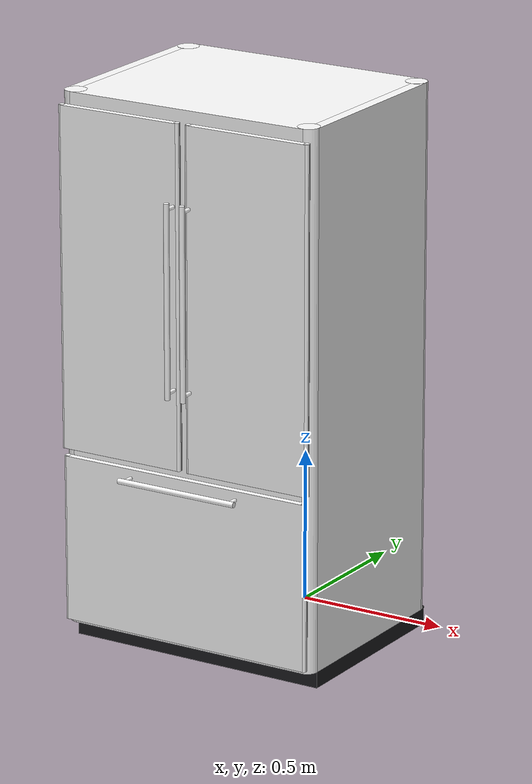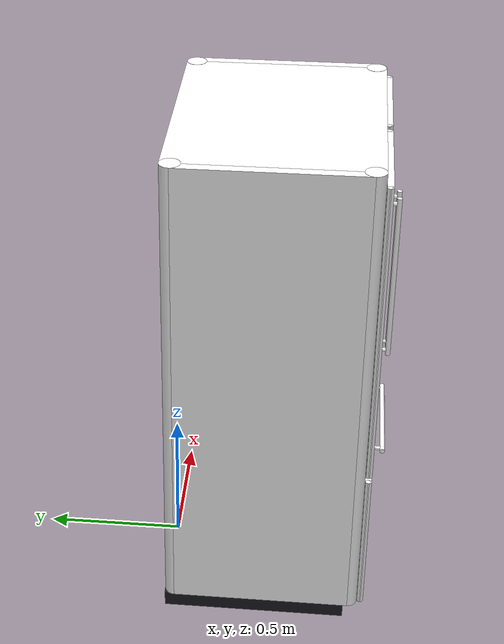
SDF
<?xml version="1.0"?>
<sdf version="1.6">
  <model name="fridge_double_door">
    <static>true</static>
    <link name="link">
      <visual name="plinth">
        <pose>0 -0.325 0.03 0 0 0</pose>
        <geometry><box><size>0.88 0.65 0.06</size></box></geometry>
        <material><ambient>0.11 0.11 0.12 1</ambient><diffuse>0.11 0.11 0.12 1</diffuse><specular>0.05 0.05 0.05 1</specular><emissive>0 0 0 1</emissive></material>
      </visual>
      <visual name="body_a">
        <pose>0 -0.35 0.92 0 0 0</pose>
        <geometry><box><size>0.83 0.7 1.72</size></box></geometry>
        <material><pbr><metal><albedo_map>textures/stainless.png</albedo_map><metalness>0.15</metalness><roughness>0.25</roughness></metal></pbr><ambient>1 1 1 1</ambient><diffuse>1 1 1 1</diffuse><specular>1 1 1 1</specular><emissive>0 0 0 1</emissive></material>
      </visual>
      <visual name="body_b0">
        <pose>-0.4325 -0.35 0.92 0 0 0</pose>
        <geometry><box><size>0.035 0.63 1.72</size></box></geometry>
        <material><pbr><metal><albedo_map>textures/stainless.png</albedo_map><metalness>0.15</metalness><roughness>0.25</roughness></metal></pbr><ambient>1 1 1 1</ambient><diffuse>1 1 1 1</diffuse><specular>1 1 1 1</specular><emissive>0 0 0 1</emissive></material>
      </visual>
      <visual name="body_b1">
        <pose>0.4325 -0.35 0.92 0 0 0</pose>
        <geometry><box><size>0.035 0.63 1.72</size></box></geometry>
        <material><pbr><metal><albedo_map>textures/stainless.png</albedo_map><metalness>0.15</metalness><roughness>0.25</roughness></metal></pbr><ambient>1 1 1 1</ambient><diffuse>1 1 1 1</diffuse><specular>1 1 1 1</specular><emissive>0 0 0 1</emissive></material>
      </visual>
      <visual name="body_c0">
        <pose>-0.415 -0.665 0.92 0 0 0</pose>
        <geometry><cylinder><radius>0.035</radius><length>1.7206</length></cylinder></geometry>
        <material><pbr><metal><albedo_map>textures/stainless.png</albedo_map><metalness>0.15</metalness><roughness>0.25</roughness></metal></pbr><ambient>1 1 1 1</ambient><diffuse>1 1 1 1</diffuse><specular>1 1 1 1</specular><emissive>0 0 0 1</emissive></material>
      </visual>
      <visual name="body_c1">
        <pose>-0.415 -0.035 0.92 0 0 0</pose>
        <geometry><cylinder><radius>0.035</radius><length>1.7208</length></cylinder></geometry>
        <material><pbr><metal><albedo_map>textures/stainless.png</albedo_map><metalness>0.15</metalness><roughness>0.25</roughness></metal></pbr><ambient>1 1 1 1</ambient><diffuse>1 1 1 1</diffuse><specular>1 1 1 1</specular><emissive>0 0 0 1</emissive></material>
      </visual>
      <visual name="body_c2">
        <pose>0.415 -0.665 0.92 0 0 0</pose>
        <geometry><cylinder><radius>0.035</radius><length>1.721</length></cylinder></geometry>
        <material><pbr><metal><albedo_map>textures/stainless.png</albedo_map><metalness>0.15</metalness><roughness>0.25</roughness></metal></pbr><ambient>1 1 1 1</ambient><diffuse>1 1 1 1</diffuse><specular>1 1 1 1</specular><emissive>0 0 0 1</emissive></material>
      </visual>
      <visual name="body_c3">
        <pose>0.415 -0.035 0.92 0 0 0</pose>
        <geometry><cylinder><radius>0.035</radius><length>1.7211</length></cylinder></geometry>
        <material><pbr><metal><albedo_map>textures/stainless.png</albedo_map><metalness>0.15</metalness><roughness>0.25</roughness></metal></pbr><ambient>1 1 1 1</ambient><diffuse>1 1 1 1</diffuse><specular>1 1 1 1</specular><emissive>0 0 0 1</emissive></material>
      </visual>
      <visual name="freezer_front_a">
        <pose>0 -0.711 0.345 0 0 0</pose>
        <geometry><box><size>0.862 0.022 0.54</size></box></geometry>
        <material><pbr><metal><albedo_map>textures/stainless.png</albedo_map><metalness>0.15</metalness><roughness>0.25</roughness></metal></pbr><ambient>1 1 1 1</ambient><diffuse>1 1 1 1</diffuse><specular>1 1 1 1</specular><emissive>0 0 0 1</emissive></material>
      </visual>
      <visual name="freezer_front_b0">
        <pose>-0.4355 -0.711 0.345 0 0 0</pose>
        <geometry><box><size>0.009 0.004 0.54</size></box></geometry>
        <material><pbr><metal><albedo_map>textures/stainless.png</albedo_map><metalness>0.15</metalness><roughness>0.25</roughness></metal></pbr><ambient>1 1 1 1</ambient><diffuse>1 1 1 1</diffuse><specular>1 1 1 1</specular><emissive>0 0 0 1</emissive></material>
      </visual>
      <visual name="freezer_front_b1">
        <pose>0.4355 -0.711 0.345 0 0 0</pose>
        <geometry><box><size>0.009 0.004 0.54</size></box></geometry>
        <material><pbr><metal><albedo_map>textures/stainless.png</albedo_map><metalness>0.15</metalness><roughness>0.25</roughness></metal></pbr><ambient>1 1 1 1</ambient><diffuse>1 1 1 1</diffuse><specular>1 1 1 1</specular><emissive>0 0 0 1</emissive></material>
      </visual>
      <visual name="freezer_front_c0">
        <pose>-0.431 -0.713 0.345 0 0 0</pose>
        <geometry><cylinder><radius>0.009</radius><length>0.5406</length></cylinder></geometry>
        <material><pbr><metal><albedo_map>textures/stainless.png</albedo_map><metalness>0.15</metalness><roughness>0.25</roughness></metal></pbr><ambient>1 1 1 1</ambient><diffuse>1 1 1 1</diffuse><specular>1 1 1 1</specular><emissive>0 0 0 1</emissive></material>
      </visual>
      <visual name="freezer_front_c1">
        <pose>-0.431 -0.709 0.345 0 0 0</pose>
        <geometry><cylinder><radius>0.009</radius><length>0.54078</length></cylinder></geometry>
        <material><pbr><metal><albedo_map>textures/stainless.png</albedo_map><metalness>0.15</metalness><roughness>0.25</roughness></metal></pbr><ambient>1 1 1 1</ambient><diffuse>1 1 1 1</diffuse><specular>1 1 1 1</specular><emissive>0 0 0 1</emissive></material>
      </visual>
      <visual name="freezer_front_c2">
        <pose>0.431 -0.713 0.345 0 0 0</pose>
        <geometry><cylinder><radius>0.009</radius><length>0.54096</length></cylinder></geometry>
        <material><pbr><metal><albedo_map>textures/stainless.png</albedo_map><metalness>0.15</metalness><roughness>0.25</roughness></metal></pbr><ambient>1 1 1 1</ambient><diffuse>1 1 1 1</diffuse><specular>1 1 1 1</specular><emissive>0 0 0 1</emissive></material>
      </visual>
      <visual name="freezer_front_c3">
        <pose>0.431 -0.709 0.345 0 0 0</pose>
        <geometry><cylinder><radius>0.009</radius><length>0.54114</length></cylinder></geometry>
        <material><pbr><metal><albedo_map>textures/stainless.png</albedo_map><metalness>0.15</metalness><roughness>0.25</roughness></metal></pbr><ambient>1 1 1 1</ambient><diffuse>1 1 1 1</diffuse><specular>1 1 1 1</specular><emissive>0 0 0 1</emissive></material>
      </visual>
      <visual name="freezer_handle_bar">
        <pose>0 -0.76 0.585 0 1.5708 0</pose>
        <geometry><cylinder><radius>0.009</radius><length>0.42</length></cylinder></geometry>
        <material><pbr><metal><albedo_map>textures/stainless.png</albedo_map><metalness>0.25</metalness><roughness>0.15</roughness></metal></pbr><ambient>1 1 1 1</ambient><diffuse>1 1 1 1</diffuse><specular>1 1 1 1</specular><emissive>0 0 0 1</emissive></material>
      </visual>
      <visual name="freezer_handle_post0">
        <pose>-0.19 -0.741 0.585 1.5708 0 0</pose>
        <geometry><cylinder><radius>0.0063</radius><length>0.038</length></cylinder></geometry>
        <material><pbr><metal><albedo_map>textures/stainless.png</albedo_map><metalness>0.25</metalness><roughness>0.15</roughness></metal></pbr><ambient>1 1 1 1</ambient><diffuse>1 1 1 1</diffuse><specular>1 1 1 1</specular><emissive>0 0 0 1</emissive></material>
      </visual>
      <visual name="freezer_handle_post1">
        <pose>0.19 -0.741 0.585 1.5708 0 0</pose>
        <geometry><cylinder><radius>0.0063</radius><length>0.038</length></cylinder></geometry>
        <material><pbr><metal><albedo_map>textures/stainless.png</albedo_map><metalness>0.25</metalness><roughness>0.15</roughness></metal></pbr><ambient>1 1 1 1</ambient><diffuse>1 1 1 1</diffuse><specular>1 1 1 1</specular><emissive>0 0 0 1</emissive></material>
      </visual>
      <visual name="door0_a">
        <pose>-0.228 -0.711 1.19 0 0 0</pose>
        <geometry><box><size>0.416 0.022 1.1</size></box></geometry>
        <material><pbr><metal><albedo_map>textures/stainless.png</albedo_map><metalness>0.15</metalness><roughness>0.25</roughness></metal></pbr><ambient>1 1 1 1</ambient><diffuse>1 1 1 1</diffuse><specular>1 1 1 1</specular><emissive>0 0 0 1</emissive></material>
      </visual>
      <visual name="door0_b0">
        <pose>-0.4405 -0.711 1.19 0 0 0</pose>
        <geometry><box><size>0.009 0.004 1.1</size></box></geometry>
        <material><pbr><metal><albedo_map>textures/stainless.png</albedo_map><metalness>0.15</metalness><roughness>0.25</roughness></metal></pbr><ambient>1 1 1 1</ambient><diffuse>1 1 1 1</diffuse><specular>1 1 1 1</specular><emissive>0 0 0 1</emissive></material>
      </visual>
      <visual name="door0_b1">
        <pose>-0.0155 -0.711 1.19 0 0 0</pose>
        <geometry><box><size>0.009 0.004 1.1</size></box></geometry>
        <material><pbr><metal><albedo_map>textures/stainless.png</albedo_map><metalness>0.15</metalness><roughness>0.25</roughness></metal></pbr><ambient>1 1 1 1</ambient><diffuse>1 1 1 1</diffuse><specular>1 1 1 1</specular><emissive>0 0 0 1</emissive></material>
      </visual>
      <visual name="door0_c0">
        <pose>-0.436 -0.713 1.19 0 0 0</pose>
        <geometry><cylinder><radius>0.009</radius><length>1.1006</length></cylinder></geometry>
        <material><pbr><metal><albedo_map>textures/stainless.png</albedo_map><metalness>0.15</metalness><roughness>0.25</roughness></metal></pbr><ambient>1 1 1 1</ambient><diffuse>1 1 1 1</diffuse><specular>1 1 1 1</specular><emissive>0 0 0 1</emissive></material>
      </visual>
      <visual name="door0_c1">
        <pose>-0.436 -0.709 1.19 0 0 0</pose>
        <geometry><cylinder><radius>0.009</radius><length>1.1008</length></cylinder></geometry>
        <material><pbr><metal><albedo_map>textures/stainless.png</albedo_map><metalness>0.15</metalness><roughness>0.25</roughness></metal></pbr><ambient>1 1 1 1</ambient><diffuse>1 1 1 1</diffuse><specular>1 1 1 1</specular><emissive>0 0 0 1</emissive></material>
      </visual>
      <visual name="door0_c2">
        <pose>-0.02 -0.713 1.19 0 0 0</pose>
        <geometry><cylinder><radius>0.009</radius><length>1.101</length></cylinder></geometry>
        <material><pbr><metal><albedo_map>textures/stainless.png</albedo_map><metalness>0.15</metalness><roughness>0.25</roughness></metal></pbr><ambient>1 1 1 1</ambient><diffuse>1 1 1 1</diffuse><specular>1 1 1 1</specular><emissive>0 0 0 1</emissive></material>
      </visual>
      <visual name="door0_c3">
        <pose>-0.02 -0.709 1.19 0 0 0</pose>
        <geometry><cylinder><radius>0.009</radius><length>1.1011</length></cylinder></geometry>
        <material><pbr><metal><albedo_map>textures/stainless.png</albedo_map><metalness>0.15</metalness><roughness>0.25</roughness></metal></pbr><ambient>1 1 1 1</ambient><diffuse>1 1 1 1</diffuse><specular>1 1 1 1</specular><emissive>0 0 0 1</emissive></material>
      </visual>
      <visual name="door0_handle_bar">
        <pose>-0.028 -0.76 1.19 0 0 0</pose>
        <geometry><cylinder><radius>0.009</radius><length>0.62</length></cylinder></geometry>
        <material><pbr><metal><albedo_map>textures/stainless.png</albedo_map><metalness>0.25</metalness><roughness>0.15</roughness></metal></pbr><ambient>1 1 1 1</ambient><diffuse>1 1 1 1</diffuse><specular>1 1 1 1</specular><emissive>0 0 0 1</emissive></material>
      </visual>
      <visual name="door0_handle_post0">
        <pose>-0.028 -0.741 0.9 1.5708 0 0</pose>
        <geometry><cylinder><radius>0.0063</radius><length>0.038</length></cylinder></geometry>
        <material><pbr><metal><albedo_map>textures/stainless.png</albedo_map><metalness>0.25</metalness><roughness>0.15</roughness></metal></pbr><ambient>1 1 1 1</ambient><diffuse>1 1 1 1</diffuse><specular>1 1 1 1</specular><emissive>0 0 0 1</emissive></material>
      </visual>
      <visual name="door0_handle_post1">
        <pose>-0.028 -0.741 1.48 1.5708 0 0</pose>
        <geometry><cylinder><radius>0.0063</radius><length>0.038</length></cylinder></geometry>
        <material><pbr><metal><albedo_map>textures/stainless.png</albedo_map><metalness>0.25</metalness><roughness>0.15</roughness></metal></pbr><ambient>1 1 1 1</ambient><diffuse>1 1 1 1</diffuse><specular>1 1 1 1</specular><emissive>0 0 0 1</emissive></material>
      </visual>
      <visual name="door1_a">
        <pose>0.228 -0.711 1.19 0 0 0</pose>
        <geometry><box><size>0.416 0.022 1.1</size></box></geometry>
        <material><pbr><metal><albedo_map>textures/stainless.png</albedo_map><metalness>0.15</metalness><roughness>0.25</roughness></metal></pbr><ambient>1 1 1 1</ambient><diffuse>1 1 1 1</diffuse><specular>1 1 1 1</specular><emissive>0 0 0 1</emissive></material>
      </visual>
      <visual name="door1_b0">
        <pose>0.0155 -0.711 1.19 0 0 0</pose>
        <geometry><box><size>0.009 0.004 1.1</size></box></geometry>
        <material><pbr><metal><albedo_map>textures/stainless.png</albedo_map><metalness>0.15</metalness><roughness>0.25</roughness></metal></pbr><ambient>1 1 1 1</ambient><diffuse>1 1 1 1</diffuse><specular>1 1 1 1</specular><emissive>0 0 0 1</emissive></material>
      </visual>
      <visual name="door1_b1">
        <pose>0.4405 -0.711 1.19 0 0 0</pose>
        <geometry><box><size>0.009 0.004 1.1</size></box></geometry>
        <material><pbr><metal><albedo_map>textures/stainless.png</albedo_map><metalness>0.15</metalness><roughness>0.25</roughness></metal></pbr><ambient>1 1 1 1</ambient><diffuse>1 1 1 1</diffuse><specular>1 1 1 1</specular><emissive>0 0 0 1</emissive></material>
      </visual>
      <visual name="door1_c0">
        <pose>0.02 -0.713 1.19 0 0 0</pose>
        <geometry><cylinder><radius>0.009</radius><length>1.1006</length></cylinder></geometry>
        <material><pbr><metal><albedo_map>textures/stainless.png</albedo_map><metalness>0.15</metalness><roughness>0.25</roughness></metal></pbr><ambient>1 1 1 1</ambient><diffuse>1 1 1 1</diffuse><specular>1 1 1 1</specular><emissive>0 0 0 1</emissive></material>
      </visual>
      <visual name="door1_c1">
        <pose>0.02 -0.709 1.19 0 0 0</pose>
        <geometry><cylinder><radius>0.009</radius><length>1.1008</length></cylinder></geometry>
        <material><pbr><metal><albedo_map>textures/stainless.png</albedo_map><metalness>0.15</metalness><roughness>0.25</roughness></metal></pbr><ambient>1 1 1 1</ambient><diffuse>1 1 1 1</diffuse><specular>1 1 1 1</specular><emissive>0 0 0 1</emissive></material>
      </visual>
      <visual name="door1_c2">
        <pose>0.436 -0.713 1.19 0 0 0</pose>
        <geometry><cylinder><radius>0.009</radius><length>1.101</length></cylinder></geometry>
        <material><pbr><metal><albedo_map>textures/stainless.png</albedo_map><metalness>0.15</metalness><roughness>0.25</roughness></metal></pbr><ambient>1 1 1 1</ambient><diffuse>1 1 1 1</diffuse><specular>1 1 1 1</specular><emissive>0 0 0 1</emissive></material>
      </visual>
      <visual name="door1_c3">
        <pose>0.436 -0.709 1.19 0 0 0</pose>
        <geometry><cylinder><radius>0.009</radius><length>1.1011</length></cylinder></geometry>
        <material><pbr><metal><albedo_map>textures/stainless.png</albedo_map><metalness>0.15</metalness><roughness>0.25</roughness></metal></pbr><ambient>1 1 1 1</ambient><diffuse>1 1 1 1</diffuse><specular>1 1 1 1</specular><emissive>0 0 0 1</emissive></material>
      </visual>
      <visual name="door1_handle_bar">
        <pose>0.028 -0.76 1.19 0 0 0</pose>
        <geometry><cylinder><radius>0.009</radius><length>0.62</length></cylinder></geometry>
        <material><pbr><metal><albedo_map>textures/stainless.png</albedo_map><metalness>0.25</metalness><roughness>0.15</roughness></metal></pbr><ambient>1 1 1 1</ambient><diffuse>1 1 1 1</diffuse><specular>1 1 1 1</specular><emissive>0 0 0 1</emissive></material>
      </visual>
      <visual name="door1_handle_post0">
        <pose>0.028 -0.741 0.9 1.5708 0 0</pose>
        <geometry><cylinder><radius>0.0063</radius><length>0.038</length></cylinder></geometry>
        <material><pbr><metal><albedo_map>textures/stainless.png</albedo_map><metalness>0.25</metalness><roughness>0.15</roughness></metal></pbr><ambient>1 1 1 1</ambient><diffuse>1 1 1 1</diffuse><specular>1 1 1 1</specular><emissive>0 0 0 1</emissive></material>
      </visual>
      <visual name="door1_handle_post1">
        <pose>0.028 -0.741 1.48 1.5708 0 0</pose>
        <geometry><cylinder><radius>0.0063</radius><length>0.038</length></cylinder></geometry>
        <material><pbr><metal><albedo_map>textures/stainless.png</albedo_map><metalness>0.25</metalness><roughness>0.15</roughness></metal></pbr><ambient>1 1 1 1</ambient><diffuse>1 1 1 1</diffuse><specular>1 1 1 1</specular><emissive>0 0 0 1</emissive></material>
      </visual>
      <collision name="body">
        <pose>0 -0.361 0.89 0 0 0</pose>
        <geometry><box><size>0.9 0.722 1.78</size></box></geometry>
      </collision>
    </link>
    <allow_auto_disable>1</allow_auto_disable>
  </model>
</sdf>
